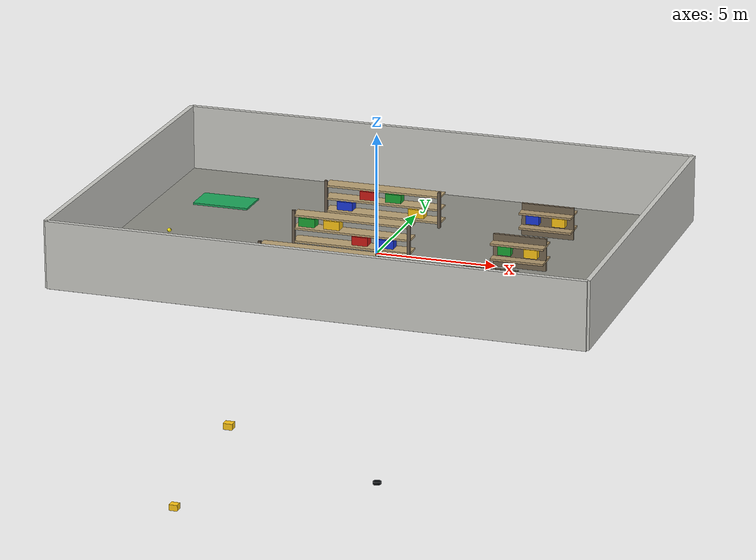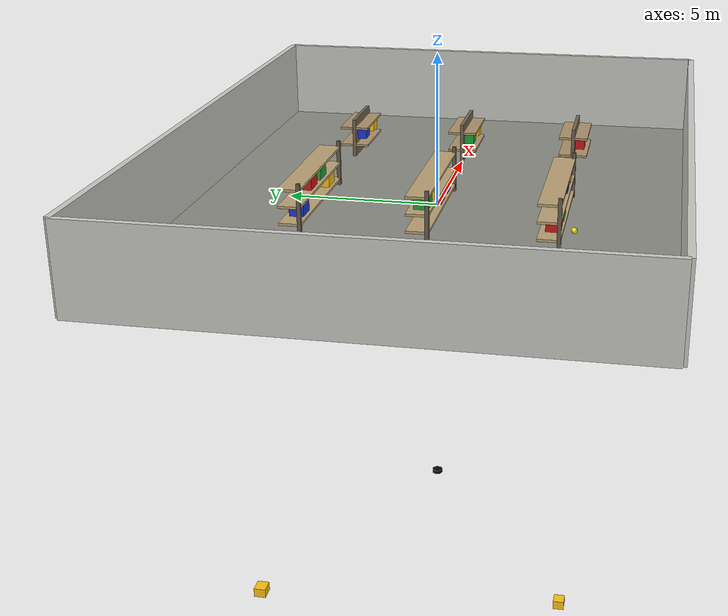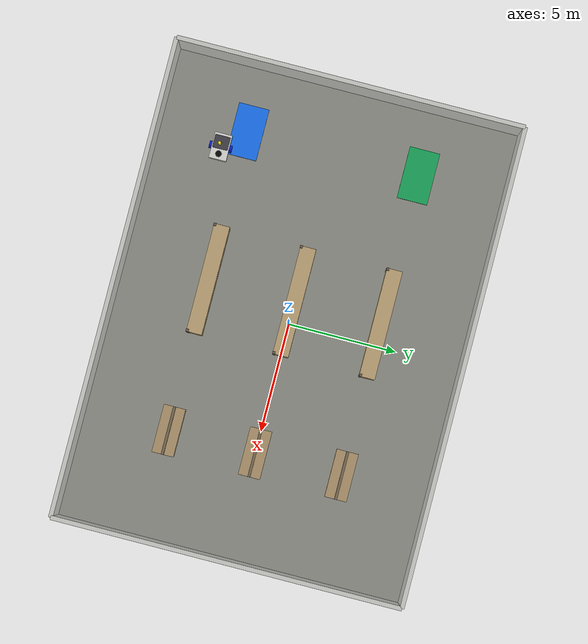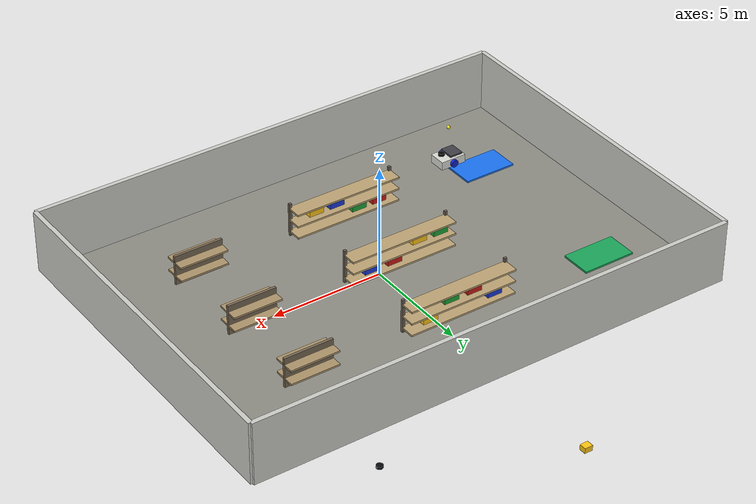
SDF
<?xml version="1.0" ?>
<sdf version="1.9">
  <world name="warehouse_mobile">
    <physics name="1ms" type="ignored">
      <max_step_size>0.01</max_step_size>
      <real_time_factor>1.0</real_time_factor>
    </physics>

    <plugin filename="gz-sim-physics-system" name="gz::sim::systems::Physics"/>
    <plugin filename="gz-sim-user-commands-system" name="gz::sim::systems::UserCommands"/>
    <plugin filename="gz-sim-scene-broadcaster-system" name="gz::sim::systems::SceneBroadcaster"/>

    <scene>
      <ambient>0.65 0.65 0.65 1</ambient>
      <background>0.04 0.05 0.06 1</background>
    </scene>

    <gui fullscreen="1">
      <camera name="warehouse_over_robot">
        <pose>0 -7 14 0 1.12 1.5708</pose>
        <view_controller>orbit</view_controller>
        <projection_type>perspective</projection_type>
      </camera>
    </gui>

    <light type="directional" name="sun">
      <cast_shadows>true</cast_shadows>
      <pose>0 0 10 0 0 0</pose>
      <diffuse>0.9 0.9 0.85 1</diffuse>
      <specular>0.25 0.25 0.25 1</specular>
      <direction>-0.35 0.2 -0.9</direction>
    </light>

    <model name="floor">
      <static>true</static>
      <link name="link">
        <collision name="collision">
          <geometry><box><size>22 16 0.08</size></box></geometry>
        </collision>
        <visual name="visual">
          <geometry><box><size>22 16 0.08</size></box></geometry>
          <material>
            <ambient>0.45 0.45 0.43 1</ambient>
            <diffuse>0.55 0.55 0.52 1</diffuse>
          </material>
        </visual>
      </link>
    </model>

    <model name="back_wall">
      <static>true</static>
      <pose>0 8 1.4 0 0 0</pose>
      <link name="link">
        <collision name="collision"><geometry><box><size>22 0.2 2.8</size></box></geometry></collision>
        <visual name="visual">
          <geometry><box><size>22 0.2 2.8</size></box></geometry>
          <material><ambient>0.72 0.72 0.7 1</ambient><diffuse>0.8 0.8 0.78 1</diffuse></material>
        </visual>
      </link>
    </model>

    <model name="front_wall">
      <static>true</static>
      <pose>0 -8 1.4 0 0 0</pose>
      <link name="link">
        <collision name="collision"><geometry><box><size>22 0.2 2.8</size></box></geometry></collision>
        <visual name="visual">
          <geometry><box><size>22 0.2 2.8</size></box></geometry>
          <material><ambient>0.72 0.72 0.7 1</ambient><diffuse>0.8 0.8 0.78 1</diffuse></material>
        </visual>
      </link>
    </model>

    <model name="left_wall">
      <static>true</static>
      <pose>-11 0 1.4 0 0 0</pose>
      <link name="link">
        <collision name="collision"><geometry><box><size>0.2 16 2.8</size></box></geometry></collision>
        <visual name="visual">
          <geometry><box><size>0.2 16 2.8</size></box></geometry>
          <material><ambient>0.72 0.72 0.7 1</ambient><diffuse>0.8 0.8 0.78 1</diffuse></material>
        </visual>
      </link>
    </model>

    <model name="right_wall">
      <static>true</static>
      <pose>11 0 1.4 0 0 0</pose>
      <link name="link">
        <collision name="collision"><geometry><box><size>0.2 16 2.8</size></box></geometry></collision>
        <visual name="visual">
          <geometry><box><size>0.2 16 2.8</size></box></geometry>
          <material><ambient>0.72 0.72 0.7 1</ambient><diffuse>0.8 0.8 0.78 1</diffuse></material>
        </visual>
      </link>
    </model>

    <model name="dispatch_a">
      <static>true</static>
      <pose>-8 -4 0.08 0 0 0</pose>
      <link name="link">
        <visual name="visual">
          <geometry><box><size>2.4 1.4 0.08</size></box></geometry>
          <material><ambient>0.1 0.45 0.95 1</ambient><diffuse>0.1 0.45 0.95 1</diffuse></material>
        </visual>
      </link>
    </model>

    <model name="dispatch_b">
      <static>true</static>
      <pose>-8 4 0.08 0 0 0</pose>
      <link name="link">
        <visual name="visual">
          <geometry><box><size>2.4 1.4 0.08</size></box></geometry>
          <material><ambient>0.1 0.65 0.35 1</ambient><diffuse>0.1 0.65 0.35 1</diffuse></material>
        </visual>
      </link>
    </model>

    <model name="warehouse_robot">
      <pose>-7 -5 0.32 0 0 0</pose>
      <link name="base_link">
        <inertial><mass>20</mass></inertial>
        <collision name="base_collision">
          <geometry><box><size>1.2 0.8 0.38</size></box></geometry>
        </collision>
        <visual name="base_visual">
          <geometry><box><size>1.2 0.8 0.38</size></box></geometry>
          <material><ambient>0.78 0.78 0.76 1</ambient><diffuse>0.86 0.86 0.84 1</diffuse></material>
        </visual>
        <visual name="cargo_bed">
          <pose>-0.18 0 0.28 0 0 0</pose>
          <geometry><box><size>0.6 0.7 0.08</size></box></geometry>
          <material><ambient>0.2 0.2 0.22 1</ambient><diffuse>0.25 0.25 0.28 1</diffuse></material>
        </visual>
        <visual name="lidar">
          <pose>0.36 0 0.34 0 0 0</pose>
          <geometry><cylinder><radius>0.14</radius><length>0.12</length></cylinder></geometry>
          <material><ambient>0.02 0.02 0.02 1</ambient><diffuse>0.02 0.02 0.02 1</diffuse></material>
        </visual>
        <visual name="left_wheel_visual">
          <pose>0 -0.46 -0.02 1.5708 0 0</pose>
          <geometry><cylinder><radius>0.17</radius><length>0.12</length></cylinder></geometry>
          <material><ambient>0.05 0.12 0.8 1</ambient><diffuse>0.05 0.12 0.8 1</diffuse></material>
        </visual>
        <visual name="right_wheel_visual">
          <pose>0 0.46 -0.02 1.5708 0 0</pose>
          <geometry><cylinder><radius>0.17</radius><length>0.12</length></cylinder></geometry>
          <material><ambient>0.05 0.12 0.8 1</ambient><diffuse>0.05 0.12 0.8 1</diffuse></material>
        </visual>
        <visual name="camera_over_robot_marker">
          <pose>0 0 1.55 0 0 0</pose>
          <geometry><sphere><radius>0.08</radius></sphere></geometry>
          <material><ambient>1 0.92 0.1 1</ambient><diffuse>1 0.92 0.1 1</diffuse></material>
        </visual>
      </link>
    </model>

    <model name="wheel_left">
      <static>false</static>
      <pose>0 0 -10 0 0 0</pose>
      <link name="link">
        <visual name="visual"><geometry><cylinder><radius>0.17</radius><length>0.12</length></cylinder></geometry><material><ambient>0.02 0.03 0.04 1</ambient><diffuse>0.03 0.04 0.05 1</diffuse></material></visual>
        <visual name="stripe"><pose>0.088 0 0 0 0 0</pose><geometry><box><size>0.17 0.13 0.026</size></box></geometry><material><ambient>0.90 0.92 0.95 1</ambient><diffuse>0.90 0.92 0.95 1</diffuse></material></visual>
      </link>
    </model>
    <model name="wheel_right">
      <static>false</static>
      <pose>0 0 -10 0 0 0</pose>
      <link name="link">
        <visual name="visual"><geometry><cylinder><radius>0.17</radius><length>0.12</length></cylinder></geometry><material><ambient>0.02 0.03 0.04 1</ambient><diffuse>0.03 0.04 0.05 1</diffuse></material></visual>
        <visual name="stripe"><pose>0.088 0 0 0 0 0</pose><geometry><box><size>0.17 0.13 0.026</size></box></geometry><material><ambient>0.90 0.92 0.95 1</ambient><diffuse>0.90 0.92 0.95 1</diffuse></material></visual>
      </link>
    </model>

    <model name="cargo_item">
      <static>true</static>
      <pose>-7 -5 -10 0 0 0</pose>
      <link name="link">
        <visual name="visual">
          <geometry><box><size>0.36 0.32 0.26</size></box></geometry>
          <material><ambient>1.0 0.78 0.08 1</ambient><diffuse>1.0 0.78 0.08 1</diffuse></material>
        </visual>
      </link>
    </model>

    <model name="delivered_item">
      <static>true</static>
      <pose>-8 4 -10 0 0 0</pose>
      <link name="link">
        <visual name="visual">
          <geometry><box><size>0.42 0.36 0.28</size></box></geometry>
          <material><ambient>1.0 0.78 0.08 1</ambient><diffuse>1.0 0.78 0.08 1</diffuse></material>
        </visual>
      </link>
    </model>

    <model name="storage_r">
      <static>true</static>
      <pose>6 -4 0.7 0 0 0</pose>
      <link name="link">
        <collision name="collision"><geometry><box><size>2.2 1.0 1.4</size></box></geometry></collision>
        <visual name="frame"><geometry><box><size>2.2 0.12 1.4</size></box></geometry><material><ambient>0.38 0.34 0.28 1</ambient><diffuse>0.46 0.4 0.32 1</diffuse></material></visual>
        <visual name="top_shelf"><pose>0 0 0.38 0 0 0</pose><geometry><box><size>2.2 1.0 0.08</size></box></geometry><material><ambient>0.58 0.48 0.34 1</ambient><diffuse>0.68 0.58 0.42 1</diffuse></material></visual>
        <visual name="bottom_shelf"><pose>0 0 -0.25 0 0 0</pose><geometry><box><size>2.2 1.0 0.08</size></box></geometry><material><ambient>0.58 0.48 0.34 1</ambient><diffuse>0.68 0.58 0.42 1</diffuse></material></visual>
        <visual name="red_bin"><pose>-0.55 -0.18 0.12 0 0 0</pose><geometry><box><size>0.55 0.42 0.36</size></box></geometry><material><ambient>0.8 0.1 0.08 1</ambient><diffuse>0.8 0.1 0.08 1</diffuse></material></visual>
        <visual name="red_pick_slot"><pose>0.55 -0.2 0.12 0 0 0</pose><geometry><box><size>0.55 0.42 0.36</size></box></geometry><material><ambient>1.0 0.78 0.08 1</ambient><diffuse>1.0 0.78 0.08 1</diffuse></material></visual>
      </link>
    </model>
    <model name="storage_g">
      <static>true</static>
      <pose>6 0 0.7 0 0 0</pose>
      <link name="link">
        <collision name="collision"><geometry><box><size>2.2 1.0 1.4</size></box></geometry></collision>
        <visual name="frame"><geometry><box><size>2.2 0.12 1.4</size></box></geometry><material><ambient>0.38 0.34 0.28 1</ambient><diffuse>0.46 0.4 0.32 1</diffuse></material></visual>
        <visual name="top_shelf"><pose>0 0 0.38 0 0 0</pose><geometry><box><size>2.2 1.0 0.08</size></box></geometry><material><ambient>0.58 0.48 0.34 1</ambient><diffuse>0.68 0.58 0.42 1</diffuse></material></visual>
        <visual name="bottom_shelf"><pose>0 0 -0.25 0 0 0</pose><geometry><box><size>2.2 1.0 0.08</size></box></geometry><material><ambient>0.58 0.48 0.34 1</ambient><diffuse>0.68 0.58 0.42 1</diffuse></material></visual>
        <visual name="green_bin"><pose>-0.55 -0.18 0.12 0 0 0</pose><geometry><box><size>0.55 0.42 0.36</size></box></geometry><material><ambient>0.1 0.65 0.2 1</ambient><diffuse>0.1 0.65 0.2 1</diffuse></material></visual>
        <visual name="green_pick_slot"><pose>0.55 -0.2 0.12 0 0 0</pose><geometry><box><size>0.55 0.42 0.36</size></box></geometry><material><ambient>1.0 0.78 0.08 1</ambient><diffuse>1.0 0.78 0.08 1</diffuse></material></visual>
      </link>
    </model>
    <model name="storage_b">
      <static>true</static>
      <pose>6 4 0.7 0 0 0</pose>
      <link name="link">
        <collision name="collision"><geometry><box><size>2.2 1.0 1.4</size></box></geometry></collision>
        <visual name="frame"><geometry><box><size>2.2 0.12 1.4</size></box></geometry><material><ambient>0.38 0.34 0.28 1</ambient><diffuse>0.46 0.4 0.32 1</diffuse></material></visual>
        <visual name="top_shelf"><pose>0 0 0.38 0 0 0</pose><geometry><box><size>2.2 1.0 0.08</size></box></geometry><material><ambient>0.58 0.48 0.34 1</ambient><diffuse>0.68 0.58 0.42 1</diffuse></material></visual>
        <visual name="bottom_shelf"><pose>0 0 -0.25 0 0 0</pose><geometry><box><size>2.2 1.0 0.08</size></box></geometry><material><ambient>0.58 0.48 0.34 1</ambient><diffuse>0.68 0.58 0.42 1</diffuse></material></visual>
        <visual name="blue_bin"><pose>-0.55 -0.18 0.12 0 0 0</pose><geometry><box><size>0.55 0.42 0.36</size></box></geometry><material><ambient>0.1 0.22 0.85 1</ambient><diffuse>0.1 0.22 0.85 1</diffuse></material></visual>
        <visual name="blue_pick_slot"><pose>0.55 -0.2 0.12 0 0 0</pose><geometry><box><size>0.55 0.42 0.36</size></box></geometry><material><ambient>1.0 0.78 0.08 1</ambient><diffuse>1.0 0.78 0.08 1</diffuse></material></visual>
      </link>
    </model>

    <model name="rack_1">
      <static>true</static>
      <pose>-1 -4 0.8 0 0 0</pose>
      <link name="link">
        <collision name="collision"><geometry><box><size>5.0 0.55 1.6</size></box></geometry></collision>
        <visual name="bottom_shelf"><pose>0 0 -0.55 0 0 0</pose><geometry><box><size>5.0 0.72 0.08</size></box></geometry><material><ambient>0.66 0.57 0.41 1</ambient><diffuse>0.74 0.64 0.46 1</diffuse></material></visual>
        <visual name="middle_shelf"><pose>0 0 0.0 0 0 0</pose><geometry><box><size>5.0 0.72 0.08</size></box></geometry><material><ambient>0.66 0.57 0.41 1</ambient><diffuse>0.74 0.64 0.46 1</diffuse></material></visual>
        <visual name="top_shelf"><pose>0 0 0.55 0 0 0</pose><geometry><box><size>5.0 0.72 0.08</size></box></geometry><material><ambient>0.66 0.57 0.41 1</ambient><diffuse>0.74 0.64 0.46 1</diffuse></material></visual>
        <visual name="left_post"><pose>-2.45 -0.31 0 0 0 0</pose><geometry><box><size>0.12 0.12 1.55</size></box></geometry><material><ambient>0.36 0.32 0.27 1</ambient><diffuse>0.42 0.37 0.31 1</diffuse></material></visual>
        <visual name="right_post"><pose>2.45 -0.31 0 0 0 0</pose><geometry><box><size>0.12 0.12 1.55</size></box></geometry><material><ambient>0.36 0.32 0.27 1</ambient><diffuse>0.42 0.37 0.31 1</diffuse></material></visual>
        <visual name="box_a"><pose>-1.65 -0.08 -0.27 0 0 0</pose><geometry><box><size>0.68 0.46 0.36</size></box></geometry><material><ambient>0.8 0.1 0.08 1</ambient><diffuse>0.8 0.1 0.08 1</diffuse></material></visual>
        <visual name="box_b"><pose>-0.65 -0.08 -0.27 0 0 0</pose><geometry><box><size>0.68 0.46 0.36</size></box></geometry><material><ambient>0.1 0.65 0.2 1</ambient><diffuse>0.1 0.65 0.2 1</diffuse></material></visual>
        <visual name="box_c"><pose>0.45 -0.08 0.28 0 0 0</pose><geometry><box><size>0.68 0.46 0.36</size></box></geometry><material><ambient>0.1 0.22 0.85 1</ambient><diffuse>0.1 0.22 0.85 1</diffuse></material></visual>
        <visual name="box_d"><pose>1.45 -0.08 0.28 0 0 0</pose><geometry><box><size>0.68 0.46 0.36</size></box></geometry><material><ambient>1.0 0.78 0.08 1</ambient><diffuse>1.0 0.78 0.08 1</diffuse></material></visual>
      </link>
    </model>

    <model name="rack_2">
      <static>true</static>
      <pose>-1 0 0.8 0 0 0</pose>
      <link name="link">
        <collision name="collision"><geometry><box><size>5.0 0.55 1.6</size></box></geometry></collision>
        <visual name="bottom_shelf"><pose>0 0 -0.55 0 0 0</pose><geometry><box><size>5.0 0.72 0.08</size></box></geometry><material><ambient>0.66 0.57 0.41 1</ambient><diffuse>0.74 0.64 0.46 1</diffuse></material></visual>
        <visual name="middle_shelf"><pose>0 0 0.0 0 0 0</pose><geometry><box><size>5.0 0.72 0.08</size></box></geometry><material><ambient>0.66 0.57 0.41 1</ambient><diffuse>0.74 0.64 0.46 1</diffuse></material></visual>
        <visual name="top_shelf"><pose>0 0 0.55 0 0 0</pose><geometry><box><size>5.0 0.72 0.08</size></box></geometry><material><ambient>0.66 0.57 0.41 1</ambient><diffuse>0.74 0.64 0.46 1</diffuse></material></visual>
        <visual name="left_post"><pose>-2.45 -0.31 0 0 0 0</pose><geometry><box><size>0.12 0.12 1.55</size></box></geometry><material><ambient>0.36 0.32 0.27 1</ambient><diffuse>0.42 0.37 0.31 1</diffuse></material></visual>
        <visual name="right_post"><pose>2.45 -0.31 0 0 0 0</pose><geometry><box><size>0.12 0.12 1.55</size></box></geometry><material><ambient>0.36 0.32 0.27 1</ambient><diffuse>0.42 0.37 0.31 1</diffuse></material></visual>
        <visual name="box_a"><pose>-1.9 -0.08 0.28 0 0 0</pose><geometry><box><size>0.68 0.46 0.36</size></box></geometry><material><ambient>0.1 0.65 0.2 1</ambient><diffuse>0.1 0.65 0.2 1</diffuse></material></visual>
        <visual name="box_b"><pose>-0.85 -0.08 0.28 0 0 0</pose><geometry><box><size>0.68 0.46 0.36</size></box></geometry><material><ambient>1.0 0.78 0.08 1</ambient><diffuse>1.0 0.78 0.08 1</diffuse></material></visual>
        <visual name="box_c"><pose>0.35 -0.08 -0.27 0 0 0</pose><geometry><box><size>0.68 0.46 0.36</size></box></geometry><material><ambient>0.8 0.1 0.08 1</ambient><diffuse>0.8 0.1 0.08 1</diffuse></material></visual>
        <visual name="box_d"><pose>1.45 -0.08 -0.27 0 0 0</pose><geometry><box><size>0.68 0.46 0.36</size></box></geometry><material><ambient>0.1 0.22 0.85 1</ambient><diffuse>0.1 0.22 0.85 1</diffuse></material></visual>
      </link>
    </model>

    <model name="rack_3">
      <static>true</static>
      <pose>-1 4 0.8 0 0 0</pose>
      <link name="link">
        <collision name="collision"><geometry><box><size>5.0 0.55 1.6</size></box></geometry></collision>
        <visual name="bottom_shelf"><pose>0 0 -0.55 0 0 0</pose><geometry><box><size>5.0 0.72 0.08</size></box></geometry><material><ambient>0.66 0.57 0.41 1</ambient><diffuse>0.74 0.64 0.46 1</diffuse></material></visual>
        <visual name="middle_shelf"><pose>0 0 0.0 0 0 0</pose><geometry><box><size>5.0 0.72 0.08</size></box></geometry><material><ambient>0.66 0.57 0.41 1</ambient><diffuse>0.74 0.64 0.46 1</diffuse></material></visual>
        <visual name="top_shelf"><pose>0 0 0.55 0 0 0</pose><geometry><box><size>5.0 0.72 0.08</size></box></geometry><material><ambient>0.66 0.57 0.41 1</ambient><diffuse>0.74 0.64 0.46 1</diffuse></material></visual>
        <visual name="left_post"><pose>-2.45 -0.31 0 0 0 0</pose><geometry><box><size>0.12 0.12 1.55</size></box></geometry><material><ambient>0.36 0.32 0.27 1</ambient><diffuse>0.42 0.37 0.31 1</diffuse></material></visual>
        <visual name="right_post"><pose>2.45 -0.31 0 0 0 0</pose><geometry><box><size>0.12 0.12 1.55</size></box></geometry><material><ambient>0.36 0.32 0.27 1</ambient><diffuse>0.42 0.37 0.31 1</diffuse></material></visual>
        <visual name="box_a"><pose>-1.65 -0.08 -0.27 0 0 0</pose><geometry><box><size>0.68 0.46 0.36</size></box></geometry><material><ambient>0.1 0.22 0.85 1</ambient><diffuse>0.1 0.22 0.85 1</diffuse></material></visual>
        <visual name="box_b"><pose>-0.65 -0.08 0.28 0 0 0</pose><geometry><box><size>0.68 0.46 0.36</size></box></geometry><material><ambient>0.8 0.1 0.08 1</ambient><diffuse>0.8 0.1 0.08 1</diffuse></material></visual>
        <visual name="box_c"><pose>0.45 -0.08 0.28 0 0 0</pose><geometry><box><size>0.68 0.46 0.36</size></box></geometry><material><ambient>0.1 0.65 0.2 1</ambient><diffuse>0.1 0.65 0.2 1</diffuse></material></visual>
        <visual name="box_d"><pose>1.45 -0.08 -0.27 0 0 0</pose><geometry><box><size>0.68 0.46 0.36</size></box></geometry><material><ambient>1.0 0.78 0.08 1</ambient><diffuse>1.0 0.78 0.08 1</diffuse></material></visual>
      </link>
    </model>
  </world>
</sdf>
